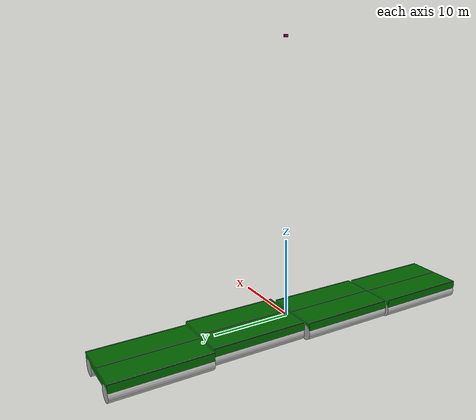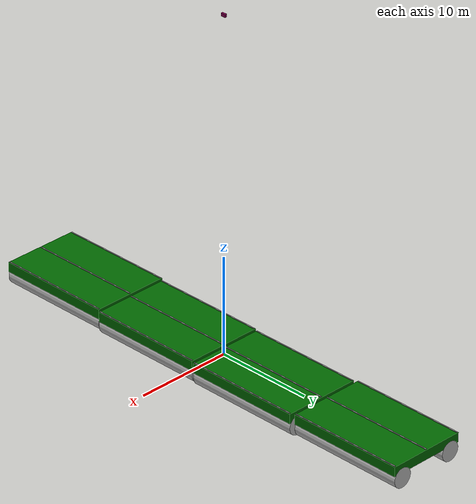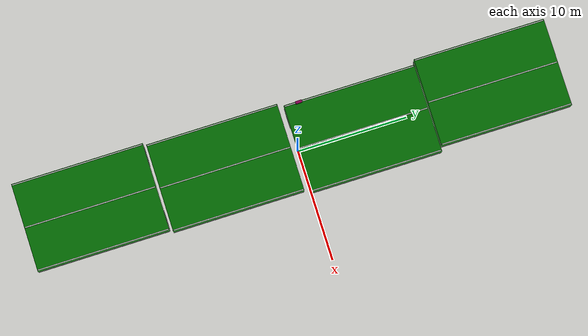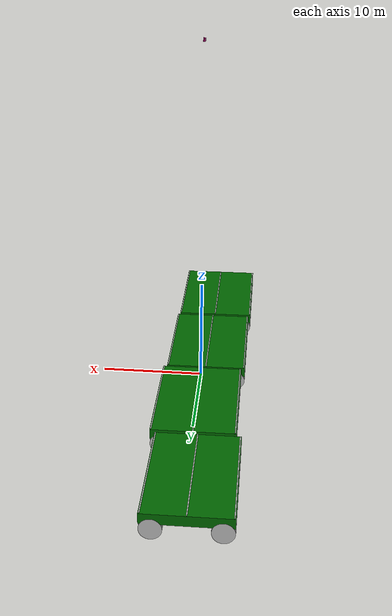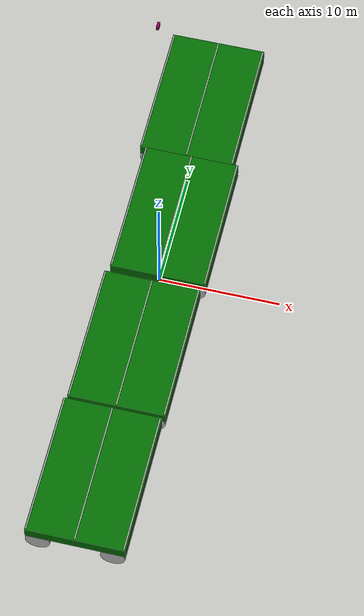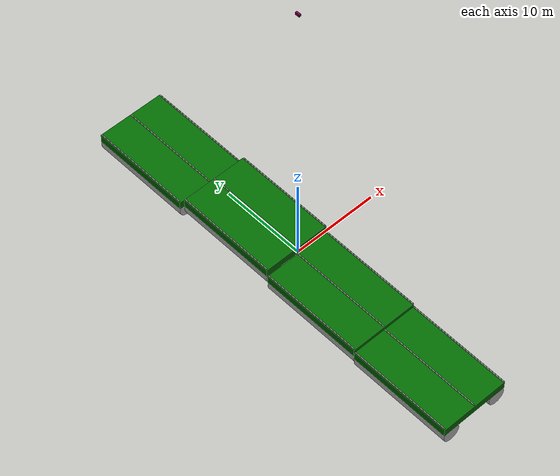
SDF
<sdf version="1.6">
 <world name="SandIsland">
  <scene>
   <sky><clouds><speed>12</speed></clouds></sky>
   <ambient>0.4 0.4 0.4 1</ambient>
   <background>0.7 0.7 0.7 1</background>
   <shadows>1</shadows>
  </scene>
  <wind><linear_velocity>10 0 0</linear_velocity></wind>
  <light name="sun" type="directional">
   <pose>0 0 10 0 -0 0</pose>
   <diffuse>0.8 0.8 0.8 1</diffuse>
   <specular>0.1 0.1 0.1 1</specular>
   <attenuation>
    <range>1000</range>
    <constant>0.9</constant>
    <linear>0.01</linear>
    <quadratic>0.001</quadratic>
   </attenuation>
   <direction>-0.5 0.5 -1</direction>
  </light>
  <gravity>0 0 -9.8</gravity>
  <magnetic_field>6e-06 2.3e-05 -4.2e-05</magnetic_field>
  <atmosphere type="adiabatic"/>
  <physics name="default_physics" default="0" type="ode">
   <max_step_size>0.001</max_step_size>
   <real_time_factor>1</real_time_factor>
   <real_time_update_rate>1000</real_time_update_rate>
  </physics>
  <spherical_coordinates>
   <surface_model>EARTH_WGS84</surface_model>
   <latitude_deg>0</latitude_deg>
   <longitude_deg>0</longitude_deg>
   <elevation>0</elevation>
   <heading_deg>0</heading_deg>
  </spherical_coordinates>
  <model name="aerial_camera">
   <pose>0 0 34 0 1.57 0</pose>
   <static>1</static>
   <link name="camera">
    <collision name="camera"><geometry><box><size>0.3 0.5 0.2</size></box></geometry></collision>
    <visual name="camera">
     <geometry><box><size>0.3 0.5 0.2</size></box></geometry>
     <material><diffuse>0.5 0 0.3 1</diffuse></material>
    </visual>
    <sensor name="camera1" type="camera">
     <update_rate>30</update_rate>
     <camera name="head">
      <horizontal_fov>1.39626</horizontal_fov>
      <image><width>800</width><height>800</height><format>R8G8B8</format></image>
      <clip><near>0.02</near><far>300</far></clip>
      <noise><type>gaussian</type><mean>0</mean><stddev>0.007</stddev></noise>
     </camera>
     <plugin name="camera_controller" filename="libgazebo_ros_camera.so">
      <alwaysOn>true</alwaysOn>
      <updateRate>0.0</updateRate>
      <cameraName>aerial_camera/camera1</cameraName>
      <imageTopicName>image_raw</imageTopicName>
      <cameraInfoTopicName>camera_info</cameraInfoTopicName>
      <frameName>camera_link</frameName>
      <hackBaseline>0.07</hackBaseline>
      <distortionK1>0.0</distortionK1>
      <distortionK2>0.0</distortionK2>
      <distortionK3>0.0</distortionK3>
      <distortionT1>0.0</distortionT1>
      <distortionT2>0.0</distortionT2>
     </plugin>
    </sensor>
   </link>
  </model>
  <model name="floating_boat_3">
   <pose>-0.131933 6.02496 0.226983 0 -0 0</pose>
   <static>0</static>
   <link name="body">
    <collision name="body"><geometry><box><size>8 12 1</size></box></geometry></collision>
    <visual name="body">
     <geometry><box><size>8 12 1</size></box></geometry>
     <material><diffuse>0 0.4 0 1</diffuse></material>
    </visual>
    <inertial>
     <mass>500</mass>
     <inertia><ixx>1</ixx><ixy>0</ixy><ixz>0</ixz><iyy>1</iyy><iyz>0</iyz><izz>1</izz></inertia>
    </inertial>
   </link>
   <link name="right_floater">
    <pose>-3 0 -1 1.57 -0 0</pose>
    <collision name="right_floater">
     <geometry><cylinder><radius>1</radius><length>12</length></cylinder></geometry>
    </collision>
    <visual name="right_floater">
     <geometry><cylinder><radius>1</radius><length>12</length></cylinder></geometry>
    </visual>
    <inertial>
     <inertia><ixx>1</ixx><ixy>0</ixy><ixz>0</ixz><iyy>1</iyy><iyz>0</iyz><izz>1</izz></inertia>
     <mass>1</mass>
    </inertial>
   </link>
   <link name="left_floater">
    <pose>3 0 -1 1.57 -0 0</pose>
    <collision name="left_floater">
     <geometry><cylinder><radius>1</radius><length>12</length></cylinder></geometry>
    </collision>
    <visual name="left_floater">
     <geometry><cylinder><radius>1</radius><length>12</length></cylinder></geometry>
    </visual>
    <inertial>
     <inertia><ixx>1</ixx><ixy>0</ixy><ixz>0</ixz><iyy>1</iyy><iyz>0</iyz><izz>1</izz></inertia>
     <mass>1</mass>
    </inertial>
   </link>
   <link name="center_line">
    <pose>0 0 0.5 0 -0 0</pose>
    <collision name="center_line"><geometry><box><size>0.1 11.9 0.1</size></box></geometry></collision>
    <visual name="center_line"><geometry><box><size>0.1 11.9 0.1</size></box></geometry></visual>
    <inertial>
     <inertia><ixx>1</ixx><ixy>0</ixy><ixz>0</ixz><iyy>1</iyy><iyz>0</iyz><izz>1</izz></inertia>
     <mass>1</mass>
    </inertial>
   </link>
   <link name="left_line">
    <pose>-3.9 0 0.5 0 -0 0</pose>
    <collision name="left_line"><geometry><box><size>0.1 11.9 0.1</size></box></geometry></collision>
    <visual name="left_line"><geometry><box><size>0.1 11.9 0.1</size></box></geometry></visual>
    <inertial>
     <inertia><ixx>1</ixx><ixy>0</ixy><ixz>0</ixz><iyy>1</iyy><iyz>0</iyz><izz>1</izz></inertia>
     <mass>1</mass>
    </inertial>
   </link>
   <link name="right_line">
    <pose>3.9 0 0.5 0 -0 0</pose>
    <collision name="right_line"><geometry><box><size>0.1 11.9 0.1</size></box></geometry></collision>
    <visual name="right_line"><geometry><box><size>0.1 11.9 0.1</size></box></geometry></visual>
    <inertial>
     <inertia><ixx>1</ixx><ixy>0</ixy><ixz>0</ixz><iyy>1</iyy><iyz>0</iyz><izz>1</izz></inertia>
     <mass>1</mass>
    </inertial>
   </link>
   <joint name="body2right_floater" type="fixed"><parent>body</parent><child>right_floater</child></joint>
   <joint name="body2left_floater" type="fixed"><parent>body</parent><child>left_floater</child></joint>
   <joint name="body2center_line" type="fixed"><parent>body</parent><child>center_line</child></joint>
   <joint name="body2left_line" type="fixed"><parent>body</parent><child>left_line</child></joint>
   <joint name="body2right_line" type="fixed"><parent>body</parent><child>right_line</child></joint>
   <plugin name="BuoyancyPlugin" filename="libbuoyancy_gazebo_plugin.so">
    <fluid_density>1000</fluid_density>
    <fluid_level>0.0</fluid_level>
    <fluid_drag>5.0</fluid_drag>
    <link>
     <name>body</name>
     <center_of_volume>0 5.5 1</center_of_volume>
     <area>0.63</area>
     <height>0.70</height>
    </link>
   </plugin>
   <plugin name="BuoyancyPlugin" filename="libbuoyancy_gazebo_plugin.so">
    <fluid_density>1000</fluid_density>
    <fluid_level>0.0</fluid_level>
    <fluid_drag>5.0</fluid_drag>
    <link>
     <name>body</name>
     <center_of_volume>0 -5.5 1</center_of_volume>
     <area>0.63</area>
     <height>0.70</height>
    </link>
   </plugin>
   <plugin name="BuoyancyPlugin" filename="libbuoyancy_gazebo_plugin.so">
    <fluid_density>1000</fluid_density>
    <fluid_level>0.0</fluid_level>
    <fluid_drag>5.0</fluid_drag>
    <link>
     <name>body</name>
     <center_of_volume>-3.5 0 1</center_of_volume>
     <area>0.63</area>
     <height>0.70</height>
    </link>
   </plugin>
   <plugin name="BuoyancyPlugin" filename="libbuoyancy_gazebo_plugin.so">
    <fluid_density>1000</fluid_density>
    <fluid_level>0.0</fluid_level>
    <fluid_drag>5.0</fluid_drag>
    <link>
     <name>body</name>
     <center_of_volume>3.5 0 1</center_of_volume>
     <area>0.63</area>
     <height>0.70</height>
    </link>
   </plugin>
  </model>
  <model name="floating_boat_4">
   <pose>-0.469381 -6.50343 0.076236 0 -0 0</pose>
   <static>0</static>
   <link name="body">
    <collision name="body"><geometry><box><size>8 12 1</size></box></geometry></collision>
    <visual name="body">
     <geometry><box><size>8 12 1</size></box></geometry>
     <material><diffuse>0 0.4 0 1</diffuse></material>
    </visual>
    <inertial>
     <mass>500</mass>
     <inertia><ixx>1</ixx><ixy>0</ixy><ixz>0</ixz><iyy>1</iyy><iyz>0</iyz><izz>1</izz></inertia>
    </inertial>
   </link>
   <link name="right_floater">
    <pose>-3 0 -1 1.57 -0 0</pose>
    <collision name="right_floater">
     <geometry><cylinder><radius>1</radius><length>12</length></cylinder></geometry>
    </collision>
    <visual name="right_floater">
     <geometry><cylinder><radius>1</radius><length>12</length></cylinder></geometry>
    </visual>
    <inertial>
     <inertia><ixx>1</ixx><ixy>0</ixy><ixz>0</ixz><iyy>1</iyy><iyz>0</iyz><izz>1</izz></inertia>
     <mass>1</mass>
    </inertial>
   </link>
   <link name="left_floater">
    <pose>3 0 -1 1.57 -0 0</pose>
    <collision name="left_floater">
     <geometry><cylinder><radius>1</radius><length>12</length></cylinder></geometry>
    </collision>
    <visual name="left_floater">
     <geometry><cylinder><radius>1</radius><length>12</length></cylinder></geometry>
    </visual>
    <inertial>
     <inertia><ixx>1</ixx><ixy>0</ixy><ixz>0</ixz><iyy>1</iyy><iyz>0</iyz><izz>1</izz></inertia>
     <mass>1</mass>
    </inertial>
   </link>
   <link name="center_line">
    <pose>0 0 0.5 0 -0 0</pose>
    <collision name="center_line"><geometry><box><size>0.1 11.9 0.1</size></box></geometry></collision>
    <visual name="center_line"><geometry><box><size>0.1 11.9 0.1</size></box></geometry></visual>
    <inertial>
     <inertia><ixx>1</ixx><ixy>0</ixy><ixz>0</ixz><iyy>1</iyy><iyz>0</iyz><izz>1</izz></inertia>
     <mass>1</mass>
    </inertial>
   </link>
   <link name="left_line">
    <pose>-3.9 0 0.5 0 -0 0</pose>
    <collision name="left_line"><geometry><box><size>0.1 11.9 0.1</size></box></geometry></collision>
    <visual name="left_line"><geometry><box><size>0.1 11.9 0.1</size></box></geometry></visual>
    <inertial>
     <inertia><ixx>1</ixx><ixy>0</ixy><ixz>0</ixz><iyy>1</iyy><iyz>0</iyz><izz>1</izz></inertia>
     <mass>1</mass>
    </inertial>
   </link>
   <link name="right_line">
    <pose>3.9 0 0.5 0 -0 0</pose>
    <collision name="right_line"><geometry><box><size>0.1 11.9 0.1</size></box></geometry></collision>
    <visual name="right_line"><geometry><box><size>0.1 11.9 0.1</size></box></geometry></visual>
    <inertial>
     <inertia><ixx>1</ixx><ixy>0</ixy><ixz>0</ixz><iyy>1</iyy><iyz>0</iyz><izz>1</izz></inertia>
     <mass>1</mass>
    </inertial>
   </link>
   <joint name="body2right_floater" type="fixed"><parent>body</parent><child>right_floater</child></joint>
   <joint name="body2left_floater" type="fixed"><parent>body</parent><child>left_floater</child></joint>
   <joint name="body2center_line" type="fixed"><parent>body</parent><child>center_line</child></joint>
   <joint name="body2left_line" type="fixed"><parent>body</parent><child>left_line</child></joint>
   <joint name="body2right_line" type="fixed"><parent>body</parent><child>right_line</child></joint>
   <plugin name="BuoyancyPlugin" filename="libbuoyancy_gazebo_plugin.so">
    <fluid_density>1000</fluid_density>
    <fluid_level>0.0</fluid_level>
    <fluid_drag>5.0</fluid_drag>
    <link>
     <name>body</name>
     <center_of_volume>0 5.5 1</center_of_volume>
     <area>0.63</area>
     <height>0.70</height>
    </link>
   </plugin>
   <plugin name="BuoyancyPlugin" filename="libbuoyancy_gazebo_plugin.so">
    <fluid_density>1000</fluid_density>
    <fluid_level>0.0</fluid_level>
    <fluid_drag>5.0</fluid_drag>
    <link>
     <name>body</name>
     <center_of_volume>0 -5.5 1</center_of_volume>
     <area>0.63</area>
     <height>0.70</height>
    </link>
   </plugin>
   <plugin name="BuoyancyPlugin" filename="libbuoyancy_gazebo_plugin.so">
    <fluid_density>1000</fluid_density>
    <fluid_level>0.0</fluid_level>
    <fluid_drag>5.0</fluid_drag>
    <link>
     <name>body</name>
     <center_of_volume>-3.5 0 1</center_of_volume>
     <area>0.63</area>
     <height>0.70</height>
    </link>
   </plugin>
   <plugin name="BuoyancyPlugin" filename="libbuoyancy_gazebo_plugin.so">
    <fluid_density>1000</fluid_density>
    <fluid_level>0.0</fluid_level>
    <fluid_drag>5.0</fluid_drag>
    <link>
     <name>body</name>
     <center_of_volume>3.5 0 1</center_of_volume>
     <area>0.63</area>
     <height>0.70</height>
    </link>
   </plugin>
  </model>
  <model name="floating_boat_5">
   <pose>-0.691577 -18.7886 0.129058 0 -0 0</pose>
   <static>0</static>
   <link name="body">
    <collision name="body"><geometry><box><size>8 12 1</size></box></geometry></collision>
    <visual name="body">
     <geometry><box><size>8 12 1</size></box></geometry>
     <material><diffuse>0 0.4 0 1</diffuse></material>
    </visual>
    <inertial>
     <mass>500</mass>
     <inertia><ixx>1</ixx><ixy>0</ixy><ixz>0</ixz><iyy>1</iyy><iyz>0</iyz><izz>1</izz></inertia>
    </inertial>
   </link>
   <link name="right_floater">
    <pose>-3 0 -1 1.57 -0 0</pose>
    <collision name="right_floater">
     <geometry><cylinder><radius>1</radius><length>12</length></cylinder></geometry>
    </collision>
    <visual name="right_floater">
     <geometry><cylinder><radius>1</radius><length>12</length></cylinder></geometry>
    </visual>
    <inertial>
     <inertia><ixx>1</ixx><ixy>0</ixy><ixz>0</ixz><iyy>1</iyy><iyz>0</iyz><izz>1</izz></inertia>
     <mass>1</mass>
    </inertial>
   </link>
   <link name="left_floater">
    <pose>3 0 -1 1.57 -0 0</pose>
    <collision name="left_floater">
     <geometry><cylinder><radius>1</radius><length>12</length></cylinder></geometry>
    </collision>
    <visual name="left_floater">
     <geometry><cylinder><radius>1</radius><length>12</length></cylinder></geometry>
    </visual>
    <inertial>
     <inertia><ixx>1</ixx><ixy>0</ixy><ixz>0</ixz><iyy>1</iyy><iyz>0</iyz><izz>1</izz></inertia>
     <mass>1</mass>
    </inertial>
   </link>
   <link name="center_line">
    <pose>0 0 0.5 0 -0 0</pose>
    <collision name="center_line"><geometry><box><size>0.1 11.9 0.1</size></box></geometry></collision>
    <visual name="center_line"><geometry><box><size>0.1 11.9 0.1</size></box></geometry></visual>
    <inertial>
     <inertia><ixx>1</ixx><ixy>0</ixy><ixz>0</ixz><iyy>1</iyy><iyz>0</iyz><izz>1</izz></inertia>
     <mass>1</mass>
    </inertial>
   </link>
   <link name="left_line">
    <pose>-3.9 0 0.5 0 -0 0</pose>
    <collision name="left_line"><geometry><box><size>0.1 11.9 0.1</size></box></geometry></collision>
    <visual name="left_line"><geometry><box><size>0.1 11.9 0.1</size></box></geometry></visual>
    <inertial>
     <inertia><ixx>1</ixx><ixy>0</ixy><ixz>0</ixz><iyy>1</iyy><iyz>0</iyz><izz>1</izz></inertia>
     <mass>1</mass>
    </inertial>
   </link>
   <link name="right_line">
    <pose>3.9 0 0.5 0 -0 0</pose>
    <collision name="right_line"><geometry><box><size>0.1 11.9 0.1</size></box></geometry></collision>
    <visual name="right_line"><geometry><box><size>0.1 11.9 0.1</size></box></geometry></visual>
    <inertial>
     <inertia><ixx>1</ixx><ixy>0</ixy><ixz>0</ixz><iyy>1</iyy><iyz>0</iyz><izz>1</izz></inertia>
     <mass>1</mass>
    </inertial>
   </link>
   <joint name="body2right_floater" type="fixed"><parent>body</parent><child>right_floater</child></joint>
   <joint name="body2left_floater" type="fixed"><parent>body</parent><child>left_floater</child></joint>
   <joint name="body2center_line" type="fixed"><parent>body</parent><child>center_line</child></joint>
   <joint name="body2left_line" type="fixed"><parent>body</parent><child>left_line</child></joint>
   <joint name="body2right_line" type="fixed"><parent>body</parent><child>right_line</child></joint>
   <plugin name="BuoyancyPlugin" filename="libbuoyancy_gazebo_plugin.so">
    <fluid_density>1000</fluid_density>
    <fluid_level>0.0</fluid_level>
    <fluid_drag>5.0</fluid_drag>
    <link>
     <name>body</name>
     <center_of_volume>0 5.5 1</center_of_volume>
     <area>0.63</area>
     <height>0.70</height>
    </link>
   </plugin>
   <plugin name="BuoyancyPlugin" filename="libbuoyancy_gazebo_plugin.so">
    <fluid_density>1000</fluid_density>
    <fluid_level>0.0</fluid_level>
    <fluid_drag>5.0</fluid_drag>
    <link>
     <name>body</name>
     <center_of_volume>0 -5.5 1</center_of_volume>
     <area>0.63</area>
     <height>0.70</height>
    </link>
   </plugin>
   <plugin name="BuoyancyPlugin" filename="libbuoyancy_gazebo_plugin.so">
    <fluid_density>1000</fluid_density>
    <fluid_level>0.0</fluid_level>
    <fluid_drag>5.0</fluid_drag>
    <link>
     <name>body</name>
     <center_of_volume>-3.5 0 1</center_of_volume>
     <area>0.63</area>
     <height>0.70</height>
    </link>
   </plugin>
   <plugin name="BuoyancyPlugin" filename="libbuoyancy_gazebo_plugin.so">
    <fluid_density>1000</fluid_density>
    <fluid_level>0.0</fluid_level>
    <fluid_drag>5.0</fluid_drag>
    <link>
     <name>body</name>
     <center_of_volume>3.5 0 1</center_of_volume>
     <area>0.63</area>
     <height>0.70</height>
    </link>
   </plugin>
  </model>
  <model name="floating_boat_6">
   <pose>-0.611943 18.1672 0.050307 0 -0 0</pose>
   <static>0</static>
   <link name="body">
    <collision name="body"><geometry><box><size>8 12 1</size></box></geometry></collision>
    <visual name="body">
     <geometry><box><size>8 12 1</size></box></geometry>
     <material><diffuse>0 0.4 0 1</diffuse></material>
    </visual>
    <inertial>
     <mass>500</mass>
     <inertia><ixx>1</ixx><ixy>0</ixy><ixz>0</ixz><iyy>1</iyy><iyz>0</iyz><izz>1</izz></inertia>
    </inertial>
   </link>
   <link name="right_floater">
    <pose>-3 0 -1 1.57 -0 0</pose>
    <collision name="right_floater">
     <geometry><cylinder><radius>1</radius><length>12</length></cylinder></geometry>
    </collision>
    <visual name="right_floater">
     <geometry><cylinder><radius>1</radius><length>12</length></cylinder></geometry>
    </visual>
    <inertial>
     <inertia><ixx>1</ixx><ixy>0</ixy><ixz>0</ixz><iyy>1</iyy><iyz>0</iyz><izz>1</izz></inertia>
     <mass>1</mass>
    </inertial>
   </link>
   <link name="left_floater">
    <pose>3 0 -1 1.57 -0 0</pose>
    <collision name="left_floater">
     <geometry><cylinder><radius>1</radius><length>12</length></cylinder></geometry>
    </collision>
    <visual name="left_floater">
     <geometry><cylinder><radius>1</radius><length>12</length></cylinder></geometry>
    </visual>
    <inertial>
     <inertia><ixx>1</ixx><ixy>0</ixy><ixz>0</ixz><iyy>1</iyy><iyz>0</iyz><izz>1</izz></inertia>
     <mass>1</mass>
    </inertial>
   </link>
   <link name="center_line">
    <pose>0 0 0.5 0 -0 0</pose>
    <collision name="center_line"><geometry><box><size>0.1 11.9 0.1</size></box></geometry></collision>
    <visual name="center_line"><geometry><box><size>0.1 11.9 0.1</size></box></geometry></visual>
    <inertial>
     <inertia><ixx>1</ixx><ixy>0</ixy><ixz>0</ixz><iyy>1</iyy><iyz>0</iyz><izz>1</izz></inertia>
     <mass>1</mass>
    </inertial>
   </link>
   <link name="left_line">
    <pose>-3.9 0 0.5 0 -0 0</pose>
    <collision name="left_line"><geometry><box><size>0.1 11.9 0.1</size></box></geometry></collision>
    <visual name="left_line"><geometry><box><size>0.1 11.9 0.1</size></box></geometry></visual>
    <inertial>
     <inertia><ixx>1</ixx><ixy>0</ixy><ixz>0</ixz><iyy>1</iyy><iyz>0</iyz><izz>1</izz></inertia>
     <mass>1</mass>
    </inertial>
   </link>
   <link name="right_line">
    <pose>3.9 0 0.5 0 -0 0</pose>
    <collision name="right_line"><geometry><box><size>0.1 11.9 0.1</size></box></geometry></collision>
    <visual name="right_line"><geometry><box><size>0.1 11.9 0.1</size></box></geometry></visual>
    <inertial>
     <inertia><ixx>1</ixx><ixy>0</ixy><ixz>0</ixz><iyy>1</iyy><iyz>0</iyz><izz>1</izz></inertia>
     <mass>1</mass>
    </inertial>
   </link>
   <joint name="body2right_floater" type="fixed"><parent>body</parent><child>right_floater</child></joint>
   <joint name="body2left_floater" type="fixed"><parent>body</parent><child>left_floater</child></joint>
   <joint name="body2center_line" type="fixed"><parent>body</parent><child>center_line</child></joint>
   <joint name="body2left_line" type="fixed"><parent>body</parent><child>left_line</child></joint>
   <joint name="body2right_line" type="fixed"><parent>body</parent><child>right_line</child></joint>
   <plugin name="BuoyancyPlugin" filename="libbuoyancy_gazebo_plugin.so">
    <fluid_density>1000</fluid_density>
    <fluid_level>0.0</fluid_level>
    <fluid_drag>5.0</fluid_drag>
    <link>
     <name>body</name>
     <center_of_volume>0 5.5 1</center_of_volume>
     <area>0.63</area>
     <height>0.70</height>
    </link>
   </plugin>
   <plugin name="BuoyancyPlugin" filename="libbuoyancy_gazebo_plugin.so">
    <fluid_density>1000</fluid_density>
    <fluid_level>0.0</fluid_level>
    <fluid_drag>5.0</fluid_drag>
    <link>
     <name>body</name>
     <center_of_volume>0 -5.5 1</center_of_volume>
     <area>0.63</area>
     <height>0.70</height>
    </link>
   </plugin>
   <plugin name="BuoyancyPlugin" filename="libbuoyancy_gazebo_plugin.so">
    <fluid_density>1000</fluid_density>
    <fluid_level>0.0</fluid_level>
    <fluid_drag>5.0</fluid_drag>
    <link>
     <name>body</name>
     <center_of_volume>-3.5 0 1</center_of_volume>
     <area>0.63</area>
     <height>0.70</height>
    </link>
   </plugin>
   <plugin name="BuoyancyPlugin" filename="libbuoyancy_gazebo_plugin.so">
    <fluid_density>1000</fluid_density>
    <fluid_level>0.0</fluid_level>
    <fluid_drag>5.0</fluid_drag>
    <link>
     <name>body</name>
     <center_of_volume>3.5 0 1</center_of_volume>
     <area>0.63</area>
     <height>0.70</height>
    </link>
   </plugin>
  </model>
 </world>
</sdf>
